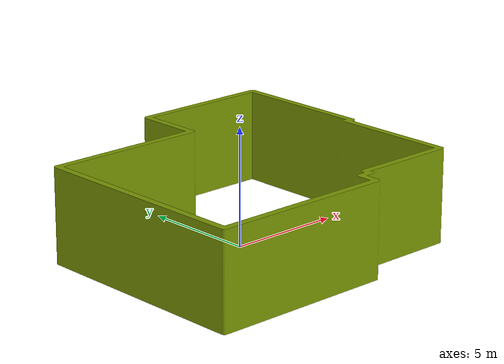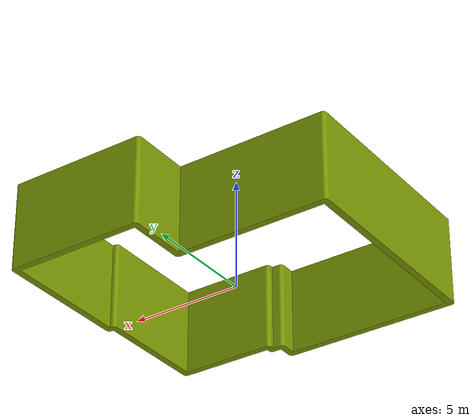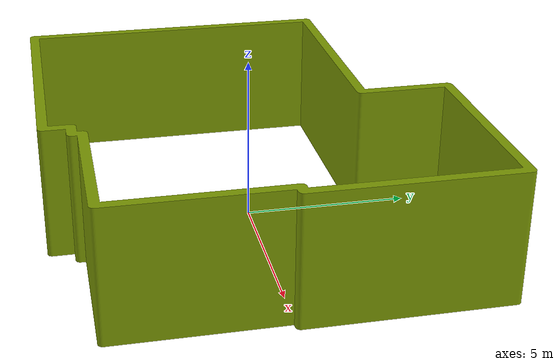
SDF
<?xml version="1.0" ?>
<sdf version="1.6">
  <model name="walls_5">
    <pose frame="">0 0 2 0 -0 0</pose>
    <static>1</static>
    <self_collide>0</self_collide>
    <allow_auto_disable>0</allow_auto_disable>
    <link name="mesh">
      <kinematic>0</kinematic>
      <gravity>1</gravity>
      <self_collide>0</self_collide>
      <collision name="collision">
        <geometry>
          <mesh>
            <uri>model://walls_5/meshes/ZAcMmRssmY.stl</uri>
            <scale>1 1 1</scale>
          </mesh>
        </geometry>
        <pose frame="">-5.84954 -4.19737 -2 0 -0 0</pose>
        <max_contacts>20</max_contacts>
      </collision>
      <visual name="visual">
        <geometry>
          <mesh>
            <uri>model://walls_5/meshes/hYbnJpnbav.stl</uri>
            <scale>1 1 1</scale>
          </mesh>
        </geometry>
        <material>
          <ambient>0.478431 0.592157 0.0117647 1</ambient>
          <diffuse>0.47843137254901963 0.592156862745098 0.011764705882352941 1</diffuse>
        </material>
        <pose frame="">-5.84954 -4.19737 -2 0 -0 0</pose>
        <cast_shadows>1</cast_shadows>
        <transparency>0.0</transparency>
      </visual>
      <pose frame="">0 0 0 0 -0 0</pose>
    </link>
  </model>
</sdf>
